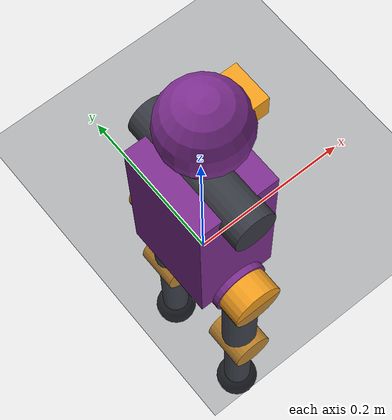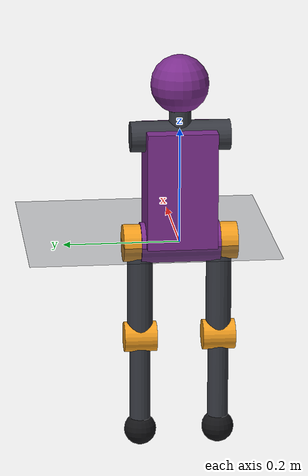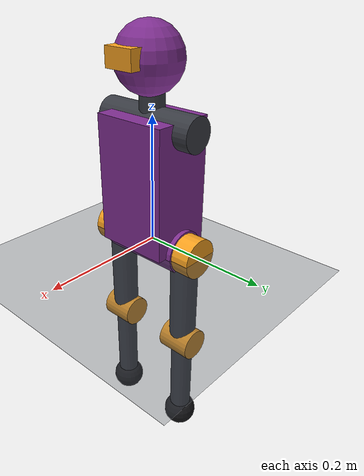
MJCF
<mujoco model="planar_biped_hopper">

  <compiler angle="radian" autolimits="true"/>

  <option timestep="0.0005" gravity="0 0 -10" integrator="implicitfast" cone="elliptic"/>

  <default>
    <geom friction="0.8 0.005 0.0001" solref="0.02 1"/>
    <default class="visual">
      <geom mass="0" contype="0" conaffinity="0" group="0"/>
    </default>
    <!-- Both legs are identical; anything shared between them lives here so
         the pair can never drift out of sync through a one-sided edit. -->
    <default class="leg">
      <joint type="hinge" axis="0 -1 0" pos="0 0 0"/>
      <geom type="capsule" material="link_mat" contype="0" conaffinity="0"/>
    </default>
  </default>

  <visual>
    <global offwidth="1280" offheight="720"/>
    <headlight ambient="0.4 0.4 0.4" diffuse="0.6 0.6 0.6" specular="0.1 0.1 0.1"/>
    <map znear="0.01" zfar="40"/>
    <quality shadowsize="4096"/>
  </visual>

  <asset>
    <texture name="skybox" type="skybox" builtin="gradient"
             rgb1="0.35 0.45 0.6" rgb2="0.08 0.1 0.15" width="256" height="256"/>
    <texture name="grid_tex" type="2d" builtin="checker" mark="edge" markrgb="0.8 0.8 0.8"
             rgb1="0.26 0.28 0.32" rgb2="0.20 0.22 0.26" width="300" height="300"/>
    <material name="grid" texture="grid_tex" texrepeat="4 4" texuniform="true" reflectance="0.15"/>
    <material name="torso_mat" rgba="0.49 0.18 0.56 1" specular="0.4" shininess="0.5"/>
    <material name="link_mat" rgba="0.22 0.23 0.26 1" specular="0.5" shininess="0.6"/>
    <material name="joint_mat" rgba="0.95 0.62 0.12 1" specular="0.6" shininess="0.7"/>
    <material name="foot_mat" rgba="0.08 0.08 0.09 1" specular="0.3" shininess="0.4"/>
  </asset>

  <worldbody>
    <light name="key" pos="0 -2 4" dir="0 0.4 -1" directional="true"
           diffuse="0.7 0.7 0.7" specular="0.3 0.3 0.3" castshadow="true"/>
    <light name="fill" pos="0 3 3" dir="0 -1 -1" directional="true"
           diffuse="0.25 0.25 0.3" castshadow="false"/>
    <geom name="floor" type="plane" size="60 5 0.1" material="grid"/>

    <body name="torso" pos="0 0 0">
      <joint name="slide_x" type="slide" axis="1 0 0" damping="0"/>
      <joint name="slide_z" type="slide" axis="0 0 1" damping="0"/>
      <joint name="torso_pitch" type="hinge" axis="0 -1 0" damping="0.2"/>
      <geom name="torso_geom" type="box" size="0.05 0.06 0.101" pos="0 0 0.101"
            mass="0.88" material="torso_mat" contype="0" conaffinity="0"/>
      <geom name="head" type="sphere" size="0.05" pos="0.005 0 0.277"
            mass="0.18" material="torso_mat" contype="0" conaffinity="0"/>
      <!-- Cosmetic only: pelvis yoke across the hips, neck, shoulder stubs.
           All massless and non-colliding (class "visual"), so the humanoid
           silhouette costs the dynamics nothing. -->
      <geom class="visual" name="pelvis" type="cylinder"
            fromto="0 -0.068 0 0 0.068 0" size="0.035" material="torso_mat"/>
      <geom class="visual" name="neck" type="capsule"
            fromto="0 0 0.198 0 0 0.232" size="0.019" material="link_mat"/>
      <geom class="visual" name="shoulders" type="cylinder"
            fromto="0 -0.085 0.188 0 0.085 0.188" size="0.026" material="link_mat"/>
      <!-- nose marker: shows which way the robot is facing, so pitch is
           readable at a glance in the viewer -->
      <geom class="visual" name="torso_nose" type="box" size="0.014 0.024 0.014"
            pos="0.049 0 0.283" material="joint_mat"/>
      <camera name="track" mode="trackcom" pos="0 -2.1 0.15" xyaxes="1 0 0 0 0.25 1"/>

      <!-- ===================== left leg ===================== -->
      <body name="thigh_l" pos="0 0.068 0">
        <!-- hip: actuated revolute joint between torso and thigh. Its qpos is
             the angle *relative to the torso*, not the world - the world
             thigh angle is torso_pitch + hip. -->
        <joint class="leg" name="hip_l" damping="0.2"/>
        <!-- hip actuator housing: drawn on the hinge axis (y) so the joint
             reads as a real revolute joint rather than a kink in the leg. -->
        <geom class="visual" name="hip_l_cylinder" type="cylinder"
              fromto="0 -0.030 0 0 0.030 0" size="0.032" material="joint_mat"/>
        <!-- carries the thigh's 0.06 kg: size and mass fixed, styling only -->
        <geom class="leg" name="thigh_l_visual" fromto="0 0 0 0 0 -0.17"
              size="0.022" mass="0.07"/>

        <body name="shin_l" pos="0 0 -0.17">
          <joint class="leg" name="knee_l" range="-2.0 -0.25" limited="true" damping="0.05"/>
          <!-- knee actuator housing, on the hinge axis; slightly smaller than
               the hip to read as the lighter distal joint -->
          <geom class="visual" name="knee_l_cylinder" type="cylinder"
                fromto="0 -0.028 0 0 0.028 0" size="0.026" material="joint_mat"/>
          <!-- carries the shin's 0.04 kg: size and mass fixed, styling only -->
          <geom class="leg" name="shin_l_visual" fromto="0 0 0 0 0 -0.17"
                size="0.018" mass="0.035"/>
          <!-- one of the only two colliding geoms on the robot -->
          <geom name="foot_l" type="sphere" size="0.028" pos="0 0 -0.17"
                mass="0.015" material="foot_mat"/>
        </body>
      </body>

      <!-- ===================== right leg ====================
           Identical to the left in every respect except the y offset; the
           controller drives the pair symmetrically. -->
      <body name="thigh_r" pos="0 -0.068 0">
        <joint class="leg" name="hip_r" damping="0.2"/>
        <geom class="visual" name="hip_r_cylinder" type="cylinder"
              fromto="0 -0.030 0 0 0.030 0" size="0.032" material="joint_mat"/>
        <geom class="leg" name="thigh_r_visual" fromto="0 0 0 0 0 -0.17"
              size="0.022" mass="0.07"/>

        <body name="shin_r" pos="0 0 -0.17">
          <joint class="leg" name="knee_r" range="-2.0 -0.25" limited="true" damping="0.05"/>
          <geom class="visual" name="knee_r_cylinder" type="cylinder"
                fromto="0 -0.028 0 0 0.028 0" size="0.026" material="joint_mat"/>
          <geom class="leg" name="shin_r_visual" fromto="0 0 0 0 0 -0.17"
                size="0.018" mass="0.035"/>
          <geom name="foot_r" type="sphere" size="0.028" pos="0 0 -0.17"
                mass="0.015" material="foot_mat"/>
        </body>
      </body>
    </body>
  </worldbody>

  <actuator>
    <motor name="hip_l_torque" joint="hip_l" gear="1" ctrlrange="-200 200"/>
    <!-- knee torque: carries the virtual leg spring / thrust force, converted
         through the leg-length Jacobian dl/dq - see controller.py. -->
    <motor name="knee_l_torque" joint="knee_l" gear="1" ctrlrange="-100 100"/>
    <motor name="hip_r_torque" joint="hip_r" gear="1" ctrlrange="-200 200"/>
    <motor name="knee_r_torque" joint="knee_r" gear="1" ctrlrange="-100 100"/>
  </actuator>

  <keyframe>
    <key name="home"
         qpos="0 0.328 0 0.6994 -0.7314 0.2720 -0.9130"
         qvel="0 0 0 0 0 0 0"/>
  </keyframe>
</mujoco>
